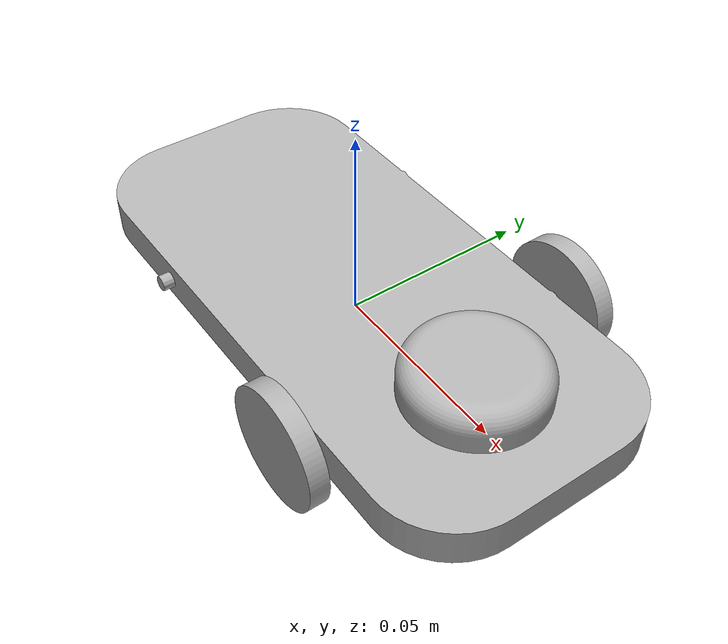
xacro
<?xml version="1.0" ?>
<robot name="roslab" xmlns:xacro="http://www.ros.org/wiki/xacro">

<xacro:include filename="$(find roslab_description)/urdf/materials.xacro" />
<xacro:include filename="$(find roslab_description)/urdf/roslab.trans" />
<xacro:include filename="$(find roslab_description)/urdf/roslab.gazebo" />
<link name="base_link">
  <inertial>
    <origin xyz="-6.147218070764903e-16 0.0 0.005" rpy="0 0 0"/>
    <mass value="1.9631413242914169"/>
    <inertia ixx="0.000785" iyy="0.003488" izz="0.00424" ixy="-0.0" iyz="0.0" ixz="0.0"/>
  </inertial>
  <visual>
    <origin xyz="0 0 0" rpy="0 0 0"/>
    <geometry>
      <mesh filename="file://$(find roslab_description)/meshes/base_link.stl" scale="0.001 0.001 0.001"/>
    </geometry>
    <material name="silver"/>
  </visual>
  <collision>
    <origin xyz="0 0 0" rpy="0 0 0"/>
    <geometry>
      <mesh filename="file://$(find roslab_description)/meshes/base_link.stl" scale="0.001 0.001 0.001"/>
    </geometry>
  </collision>
</link>

<link name="wheel2_1">
  <inertial>
    <origin xyz="4.513750484491652e-15 0.0025107816711590417 3.469446951953614e-18" rpy="0 0 0"/>
    <mass value="0.005000127451526981"/>
    <inertia ixx="0.0" iyy="1e-06" izz="0.0" ixy="0.0" iyz="0.0" ixz="0.0"/>
  </inertial>
  <visual>
    <origin xyz="-0.03 -0.038 -0.005" rpy="0 0 0"/>
    <geometry>
      <mesh filename="file://$(find roslab_description)/meshes/wheel2_1.stl" scale="0.001 0.001 0.001"/>
    </geometry>
    <material name="silver"/>
  </visual>
  <collision>
    <origin xyz="-0.03 -0.038 -0.005" rpy="0 0 0"/>
    <geometry>
      <mesh filename="file://$(find roslab_description)/meshes/wheel2_1.stl" scale="0.001 0.001 0.001"/>
    </geometry>
  </collision>
</link>

<link name="wheel1_1">
  <inertial>
    <origin xyz="-2.258609965721803e-15 -0.0025107816711590417 -6.071532165918825e-18" rpy="0 0 0"/>
    <mass value="0.005000127451526977"/>
    <inertia ixx="0.0" iyy="1e-06" izz="0.0" ixy="0.0" iyz="-0.0" ixz="-0.0"/>
  </inertial>
  <visual>
    <origin xyz="-0.03 0.038 -0.005" rpy="0 0 0"/>
    <geometry>
      <mesh filename="file://$(find roslab_description)/meshes/wheel1_1.stl" scale="0.001 0.001 0.001"/>
    </geometry>
    <material name="silver"/>
  </visual>
  <collision>
    <origin xyz="-0.03 0.038 -0.005" rpy="0 0 0"/>
    <geometry>
      <mesh filename="file://$(find roslab_description)/meshes/wheel1_1.stl" scale="0.001 0.001 0.001"/>
    </geometry>
  </collision>
</link>

<link name="lidar_1">
  <inertial>
    <origin xyz="0.04499999999999999 -2.5138551847568914e-18 0.0047654478650468995" rpy="0 0 0"/>
    <mass value="0.02448591683461854"/>
    <inertia ixx="2e-06" iyy="2e-06" izz="4e-06" ixy="-0.0" iyz="-0.0" ixz="0.0"/>
  </inertial>
  <visual>
    <origin xyz="-0.0 -0.0 -0.01" rpy="0 0 0"/>
    <geometry>
      <mesh filename="file://$(find roslab_description)/meshes/lidar_1.stl" scale="0.001 0.001 0.001"/>
    </geometry>
    <material name="silver"/>
  </visual>
  <collision>
    <origin xyz="-0.0 -0.0 -0.01" rpy="0 0 0"/>
    <geometry>
      <mesh filename="file://$(find roslab_description)/meshes/lidar_1.stl" scale="0.001 0.001 0.001"/>
    </geometry>
  </collision>
</link>

<link name="caster_1">
  <inertial>
    <origin xyz="-0.05 -2.513030859427963e-18 -0.003958333333333335" rpy="0 0 0"/>
    <mass value="0.0035784703819796244"/>
    <inertia ixx="0.0" iyy="0.0" izz="0.0" ixy="-0.0" iyz="-0.0" ixz="-0.0"/>
  </inertial>
  <visual>
    <origin xyz="-0.0 -0.0 -0.0" rpy="0 0 0"/>
    <geometry>
      <mesh filename="file://$(find roslab_description)/meshes/caster_1.stl" scale="0.001 0.001 0.001"/>
    </geometry>
    <material name="silver"/>
  </visual>
  <collision>
    <origin xyz="-0.0 -0.0 -0.0" rpy="0 0 0"/>
    <geometry>
      <mesh filename="file://$(find roslab_description)/meshes/caster_1.stl" scale="0.001 0.001 0.001"/>
    </geometry>
  </collision>
</link>

<joint name="Revolute 1" type="continuous">
  <origin xyz="0.03 0.038 0.005" rpy="0 0 0"/>
  <parent link="base_link"/>
  <child link="wheel2_1"/>
  <axis xyz="0.0 1.0 0.0"/>
</joint>

<joint name="Revolute 4" type="continuous">
  <origin xyz="0.03 -0.038 0.005" rpy="0 0 0"/>
  <parent link="base_link"/>
  <child link="wheel1_1"/>
  <axis xyz="0.0 -1.0 0.0"/>
</joint>

<joint name="Rigid 5" type="fixed">
  <origin xyz="0.0 0.0 0.01" rpy="0 0 0"/>
  <parent link="base_link"/>
  <child link="lidar_1"/>
</joint>

<joint name="Rigid 6" type="fixed">
  <origin xyz="0.0 0.0 0.0" rpy="0 0 0"/>
  <parent link="base_link"/>
  <child link="caster_1"/>
</joint>

</robot>

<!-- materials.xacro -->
<robot name="roslab" xmlns:xacro="http://www.ros.org/wiki/xacro" >

<material name="silver">
  <color rgba="0.700 0.700 0.700 1.000"/>
</material>

</robot>

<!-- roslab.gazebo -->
<robot name="roslab" xmlns:xacro="http://www.ros.org/wiki/xacro" >

<xacro:property name="body_color" value="Gazebo/Silver" />

<gazebo>
  <plugin name="control" filename="libgazebo_ros_control.so"/>
</gazebo>
<gazebo reference="base_link">
  <material>${body_color}</material>
  <mu1>0.2</mu1>
  <mu2>0.2</mu2>
  <self_collide>true</self_collide>
  <gravity>true</gravity>
</gazebo>

<gazebo reference="wheel2_1">
  <material>${body_color}</material>
  <mu1>0.2</mu1>
  <mu2>0.2</mu2>
  <self_collide>true</self_collide>
</gazebo>

<gazebo reference="wheel1_1">
  <material>${body_color}</material>
  <mu1>0.2</mu1>
  <mu2>0.2</mu2>
  <self_collide>true</self_collide>
</gazebo>

<gazebo reference="lidar_1">
  <material>${body_color}</material>
  <mu1>0.2</mu1>
  <mu2>0.2</mu2>
  <self_collide>true</self_collide>
</gazebo>

<gazebo reference="caster_1">
  <material>${body_color}</material>
  <mu1>0.2</mu1>
  <mu2>0.2</mu2>
  <self_collide>true</self_collide>
</gazebo>

</robot>
